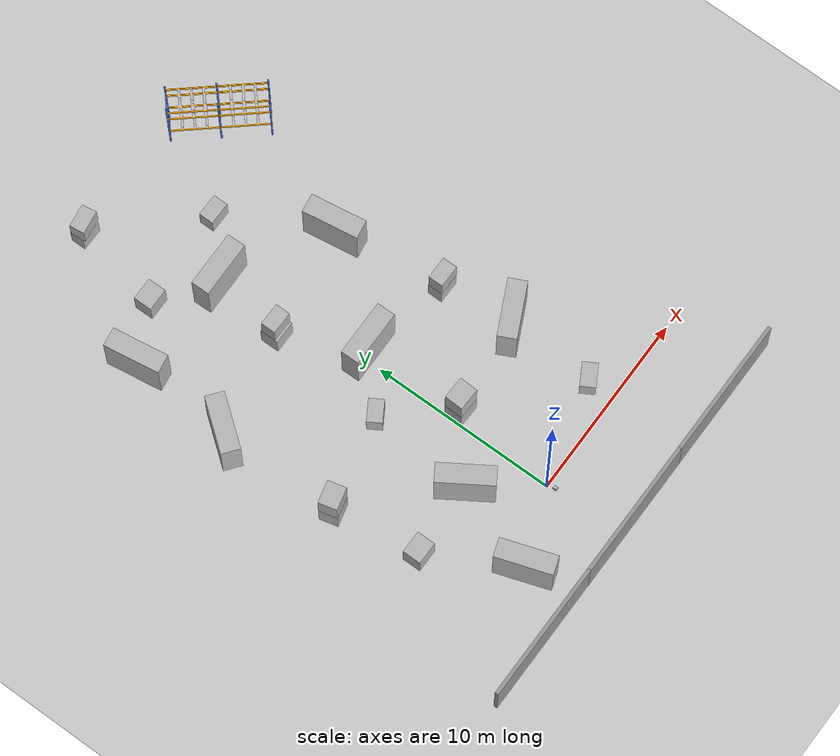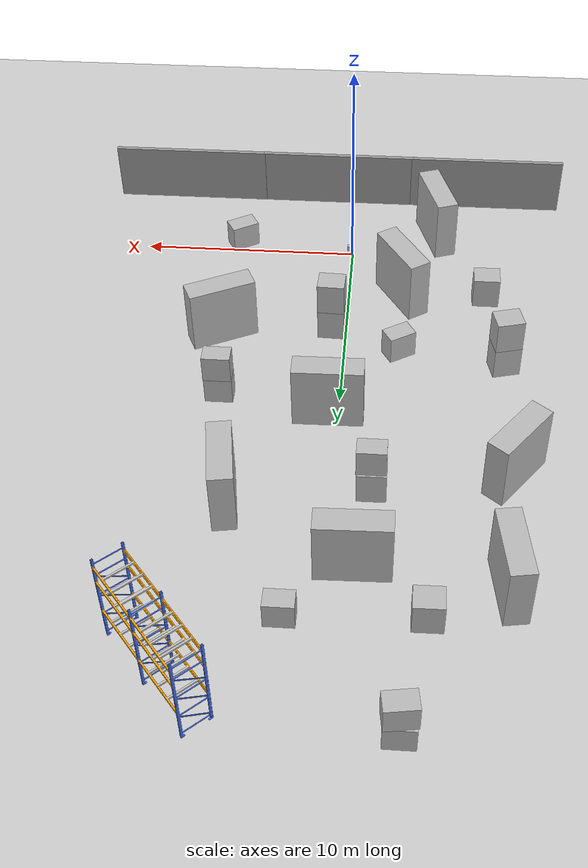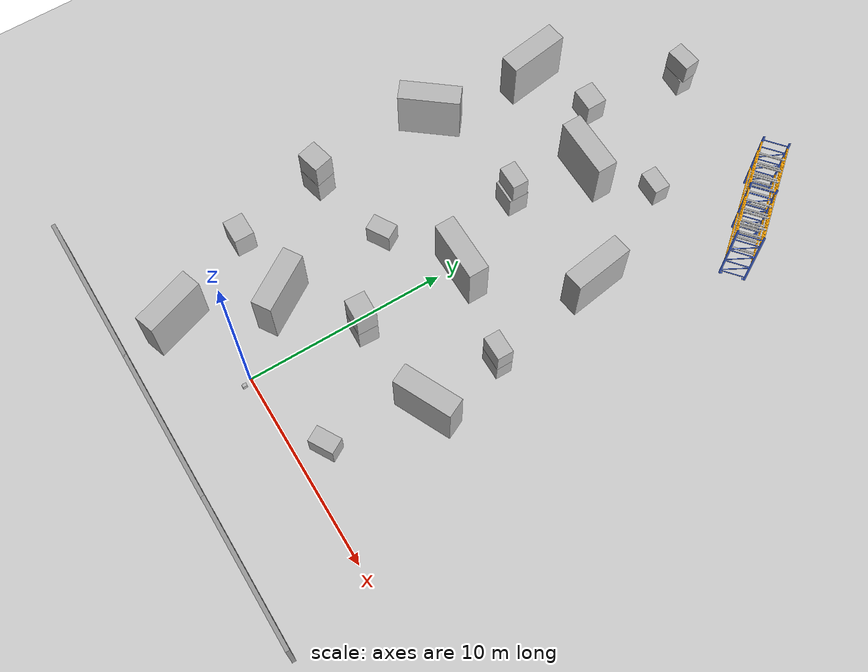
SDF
<sdf version="1.7">
 <world name="default">
  <light name="sun" type="directional">
   <pose>0 0 10 0 -0 0</pose>
   <diffuse>0.8 0.8 0.8 1</diffuse>
   <specular>0.2 0.2 0.2 1</specular>
   <attenuation>
    <range>1000</range>
    <constant>0.9</constant>
    <linear>0.01</linear>
    <quadratic>0.001</quadratic>
   </attenuation>
   <direction>-0.5 0.1 -0.9</direction>
   <spot><inner_angle>0</inner_angle><outer_angle>0</outer_angle><falloff>0</falloff></spot>
  </light>
  <model name="ground_plane">
   <static>1</static>
   <link name="link">
    <collision name="collision">
     <geometry><plane><normal>0 0 1</normal><size>100 100</size></plane></geometry>
     <surface><friction><ode><mu>100</mu><mu2>50</mu2></ode></friction></surface>
    </collision>
    <visual name="visual">
     <cast_shadows>0</cast_shadows>
     <geometry><plane><normal>0 0 1</normal><size>100 100</size></plane></geometry>
     <material>
      <script><uri>file://media/materials/scripts/gazebo.material</uri><name>Gazebo/Grey</name></script>
     </material>
    </visual>
   </link>
  </model>
  <gravity>0 0 -9.8</gravity>
  <magnetic_field>6e-06 2.3e-05 -4.2e-05</magnetic_field>
  <atmosphere type="adiabatic"/>
  <physics type="ode">
   <max_step_size>0.001</max_step_size>
   <real_time_factor>1</real_time_factor>
   <real_time_update_rate>1000</real_time_update_rate>
  </physics>
  <scene><ambient>0.4 0.4 0.4 1</ambient><background>0.7 0.7 0.7 1</background><shadows>1</shadows></scene>
  <spherical_coordinates>
   <surface_model>EARTH_WGS84</surface_model>
   <latitude_deg>0</latitude_deg>
   <longitude_deg>0</longitude_deg>
   <elevation>0</elevation>
   <heading_deg>0</heading_deg>
  </spherical_coordinates>
  <model name="Box">
   <static>1</static>
   <link name="link">
    <collision name="collision">
     <geometry><mesh><uri>model://Box/meshes/Box.dae</uri></mesh></geometry>
    </collision>
    <visual name="visual"><geometry><mesh><uri>model://Box/meshes/Box.dae</uri></mesh></geometry></visual>
   </link>
   <pose>0.182114 -0.394108 0 0 -0 0</pose>
  </model>
  <model name="brick_box_3x1x3">
   <static>1</static>
   <link name="chassis">
    <pose>0 0 1.5 0 -0 0</pose>
    <collision name="collision"><geometry><box><size>3 1 3</size></box></geometry></collision>
    <visual name="visual">
     <geometry><mesh><uri>model://brick_box_3x1x3/meshes/simple_box.dae</uri><scale>3 1 3</scale></mesh></geometry>
     <material>
      <script>
       <uri>model://brick_box_3x1x3/materials/scripts</uri>
       <uri>model://brick_box_3x1x3/materials/textures</uri>
       <name>BrickBox/Diffuse</name>
      </script>
     </material>
    </visual>
   </link>
   <pose>-2.46974 3.06331 0 0 0 -0.99916</pose>
  </model>
  <model name="brick_box_3x1x3_clone">
   <static>1</static>
   <link name="chassis">
    <pose>0 0 1.5 0 -0 0</pose>
    <collision name="collision"><geometry><box><size>3 1 3</size></box></geometry></collision>
    <visual name="visual">
     <geometry><mesh><uri>model://brick_box_3x1x3/meshes/simple_box.dae</uri><scale>3 1 3</scale></mesh></geometry>
     <material>
      <script>
       <uri>model://brick_box_3x1x3/materials/scripts</uri>
       <uri>model://brick_box_3x1x3/materials/textures</uri>
       <name>BrickBox/Diffuse</name>
      </script>
     </material>
    </visual>
   </link>
   <pose>-4.03567 -1.62229 0 0 -0 1.89603</pose>
  </model>
  <model name="Big box">
   <pose>0.629778 5.59499 2.24909 -1e-05 0.001495 -0.040431</pose>
   <static>0</static>
   <link name="link">
    <inertial>
     <mass>40</mass>
     <inertia><ixx>1</ixx><ixy>0</ixy><ixz>0</ixz><iyy>1</iyy><iyz>0</iyz><izz>1</izz></inertia>
    </inertial>
    <collision name="collision">
     <geometry><box><size>1.2 0.8 1.5</size></box></geometry>
     <surface><contact><ode><max_vel>0.1</max_vel><min_depth>0.001</min_depth></ode></contact></surface>
    </collision>
    <visual name="visual"><geometry><mesh><uri>model://big_box/meshes/big_box.dae</uri></mesh></geometry></visual>
   </link>
  </model>
  <model name="Big box_0">
   <pose>-6.38606 2.94836 0.749499 -0 -0.000833 6e-06</pose>
   <static>0</static>
   <link name="link">
    <inertial>
     <mass>40</mass>
     <inertia><ixx>1</ixx><ixy>0</ixy><ixz>0</ixz><iyy>1</iyy><iyz>0</iyz><izz>1</izz></inertia>
    </inertial>
    <collision name="collision">
     <geometry><box><size>1.2 0.8 1.5</size></box></geometry>
     <surface><contact><ode><max_vel>0.1</max_vel><min_depth>0.001</min_depth></ode></contact></surface>
    </collision>
    <visual name="visual"><geometry><mesh><uri>model://big_box/meshes/big_box.dae</uri></mesh></geometry></visual>
   </link>
  </model>
  <model name="Big box_1">
   <pose>0.623645 5.59399 0.749499 0 0.000833 -0.036606</pose>
   <static>0</static>
   <link name="link">
    <inertial>
     <mass>40</mass>
     <inertia><ixx>1</ixx><ixy>0</ixy><ixz>0</ixz><iyy>1</iyy><iyz>0</iyz><izz>1</izz></inertia>
    </inertial>
    <collision name="collision">
     <geometry><box><size>1.2 0.8 1.5</size></box></geometry>
     <surface><contact><ode><max_vel>0.1</max_vel><min_depth>0.001</min_depth></ode></contact></surface>
    </collision>
    <visual name="visual"><geometry><mesh><uri>model://big_box/meshes/big_box.dae</uri></mesh></geometry></visual>
   </link>
  </model>
  <model name="Big box 4">
   <pose>5.10472 1.25829 2.099 -0.955961 -1.56929 1.47945</pose>
   <static>0</static>
   <link name="link">
    <inertial>
     <mass>40</mass>
     <inertia><ixx>1</ixx><ixy>0</ixy><ixz>0</ixz><iyy>1</iyy><iyz>0</iyz><izz>1</izz></inertia>
    </inertial>
    <collision name="collision">
     <geometry><box><size>1.2 0.8 1.25</size></box></geometry>
     <surface><contact><ode><max_vel>0.1</max_vel><min_depth>0.001</min_depth></ode></contact></surface>
    </collision>
    <visual name="visual">
     <geometry><mesh><uri>model://big_box4/meshes/big_box.dae</uri></mesh></geometry>
    </visual>
   </link>
  </model>
  <model name="brick_box_3x1x3_clone_0">
   <static>1</static>
   <link name="chassis">
    <pose>0 0 1.5 0 -0 0</pose>
    <collision name="collision"><geometry><box><size>3 1 3</size></box></geometry></collision>
    <visual name="visual">
     <geometry><mesh><uri>model://brick_box_3x1x3/meshes/simple_box.dae</uri><scale>3 1 3</scale></mesh></geometry>
     <material>
      <script>
       <uri>model://brick_box_3x1x3/materials/scripts</uri>
       <uri>model://brick_box_3x1x3/materials/textures</uri>
       <name>BrickBox/Diffuse</name>
      </script>
     </material>
    </visual>
   </link>
   <pose>5.54678 6.12966 0 0 0 -2.69285</pose>
  </model>
  <model name="big_box3">
   <pose>-2.42222 8.43983 2.12423 -3.4e-05 -0.000153 0.541429</pose>
   <static>0</static>
   <link name="link">
    <inertial>
     <mass>40</mass>
     <inertia><ixx>1</ixx><ixy>0</ixy><ixz>0</ixz><iyy>1</iyy><iyz>0</iyz><izz>1</izz></inertia>
    </inertial>
    <collision name="collision">
     <geometry><box><size>1.2 0.8 1.25</size></box></geometry>
     <surface><contact><ode><max_vel>0.1</max_vel><min_depth>0.001</min_depth></ode></contact></surface>
    </collision>
    <visual name="visual">
     <geometry><mesh><uri>model://big_box3/meshes/big_box.dae</uri></mesh></geometry>
    </visual>
   </link>
  </model>
  <model name="brick_box_3x1x3_clone_1">
   <static>1</static>
   <link name="chassis">
    <pose>0 0 1.5 0 -0 0</pose>
    <collision name="collision"><geometry><box><size>3 1 3</size></box></geometry></collision>
    <visual name="visual">
     <geometry><mesh><uri>model://brick_box_3x1x3/meshes/simple_box.dae</uri><scale>3 1 3</scale></mesh></geometry>
     <material>
      <script>
       <uri>model://brick_box_3x1x3/materials/scripts</uri>
       <uri>model://brick_box_3x1x3/materials/textures</uri>
       <name>BrickBox/Diffuse</name>
      </script>
     </material>
    </visual>
   </link>
   <pose>0.420123 10.9877 0 0 -0 0.010238</pose>
  </model>
  <model name="brick_box_3x1x3_clone_2">
   <static>1</static>
   <link name="chassis">
    <pose>0 0 1.5 0 -0 0</pose>
    <collision name="collision"><geometry><box><size>3 1 3</size></box></geometry></collision>
    <visual name="visual">
     <geometry><mesh><uri>model://brick_box_3x1x3/meshes/simple_box.dae</uri><scale>3 1 3</scale></mesh></geometry>
     <material>
      <script>
       <uri>model://brick_box_3x1x3/materials/scripts</uri>
       <uri>model://brick_box_3x1x3/materials/textures</uri>
       <name>BrickBox/Diffuse</name>
      </script>
     </material>
    </visual>
   </link>
   <pose>4.23516 15.8413 0 0 0 -1.41912</pose>
  </model>
  <model name="brick_box_3x1x3_clone_3">
   <static>1</static>
   <link name="chassis">
    <pose>0 0 1.5 0 -0 0</pose>
    <collision name="collision"><geometry><box><size>3 1 3</size></box></geometry></collision>
    <visual name="visual">
     <geometry><mesh><uri>model://brick_box_3x1x3/meshes/simple_box.dae</uri><scale>3 1 3</scale></mesh></geometry>
     <material>
      <script>
       <uri>model://brick_box_3x1x3/materials/scripts</uri>
       <uri>model://brick_box_3x1x3/materials/textures</uri>
       <name>BrickBox/Diffuse</name>
      </script>
     </material>
    </visual>
   </link>
   <pose>-7.28132 13.9245 0 0 0 -2.23</pose>
  </model>
  <model name="big_box3_0">
   <pose>5.16674 10.0236 0.624499 0.001247 -0 -0.001691</pose>
   <static>0</static>
   <link name="link">
    <inertial>
     <mass>40</mass>
     <inertia><ixx>1</ixx><ixy>0</ixy><ixz>0</ixz><iyy>1</iyy><iyz>0</iyz><izz>1</izz></inertia>
    </inertial>
    <collision name="collision">
     <geometry><box><size>1.2 0.8 1.25</size></box></geometry>
     <surface><contact><ode><max_vel>0.1</max_vel><min_depth>0.001</min_depth></ode></contact></surface>
    </collision>
    <visual name="visual">
     <geometry><mesh><uri>model://big_box3/meshes/big_box.dae</uri></mesh></geometry>
    </visual>
   </link>
  </model>
  <model name="Big box 4_0">
   <pose>5.17953 10.0141 1.87399 0.001242 -0.000835 -0.002843</pose>
   <static>0</static>
   <link name="link">
    <inertial>
     <mass>40</mass>
     <inertia><ixx>1</ixx><ixy>0</ixy><ixz>0</ixz><iyy>1</iyy><iyz>0</iyz><izz>1</izz></inertia>
    </inertial>
    <collision name="collision">
     <geometry><box><size>1.2 0.8 1.25</size></box></geometry>
     <surface><contact><ode><max_vel>0.1</max_vel><min_depth>0.001</min_depth></ode></contact></surface>
    </collision>
    <visual name="visual">
     <geometry><mesh><uri>model://big_box4/meshes/big_box.dae</uri></mesh></geometry>
    </visual>
   </link>
  </model>
  <model name="grey_wall">
   <static>1</static>
   <link name="link">
    <pose>0 0 1.4 0 -0 0</pose>
    <collision name="collision"><geometry><box><size>7.5 0.2 2.8</size></box></geometry></collision>
    <visual name="visual">
     <cast_shadows>0</cast_shadows>
     <geometry><box><size>7.5 0.2 2.8</size></box></geometry>
     <material>
      <script>
       <uri>model://grey_wall/materials/scripts</uri>
       <uri>model://grey_wall/materials/textures</uri>
       <name>vrc/grey_wall</name>
      </script>
     </material>
    </visual>
   </link>
   <pose>-6.4722 -4.38366 0 0 -0 0</pose>
  </model>
  <model name="grey_wall_clone">
   <static>1</static>
   <link name="link">
    <pose>0 0 1.4 0 -0 0</pose>
    <collision name="collision"><geometry><box><size>7.5 0.2 2.8</size></box></geometry></collision>
    <visual name="visual">
     <cast_shadows>0</cast_shadows>
     <geometry><box><size>7.5 0.2 2.8</size></box></geometry>
     <material>
      <script>
       <uri>model://grey_wall/materials/scripts</uri>
       <uri>model://grey_wall/materials/textures</uri>
       <name>vrc/grey_wall</name>
      </script>
     </material>
    </visual>
   </link>
   <pose>0.954133 -4.38595 0 0 -0 0</pose>
  </model>
  <model name="grey_wall_clone_0">
   <static>1</static>
   <link name="link">
    <pose>0 0 1.4 0 -0 0</pose>
    <collision name="collision"><geometry><box><size>7.5 0.2 2.8</size></box></geometry></collision>
    <visual name="visual">
     <cast_shadows>0</cast_shadows>
     <geometry><box><size>7.5 0.2 2.8</size></box></geometry>
     <material>
      <script>
       <uri>model://grey_wall/materials/scripts</uri>
       <uri>model://grey_wall/materials/textures</uri>
       <name>vrc/grey_wall</name>
      </script>
     </material>
    </visual>
   </link>
   <pose>8.39955 -4.38045 0 0 -0 0</pose>
  </model>
  <model name="Big box_0_clone">
   <pose>-7.07761 7.5453 0.7495 -1e-06 0.000833 0.240191</pose>
   <static>0</static>
   <link name="link">
    <inertial>
     <mass>40</mass>
     <inertia><ixx>1</ixx><ixy>0</ixy><ixz>0</ixz><iyy>1</iyy><iyz>0</iyz><izz>1</izz></inertia>
    </inertial>
    <collision name="collision">
     <geometry><box><size>1.2 0.8 1.5</size></box></geometry>
     <surface><contact><ode><max_vel>0.1</max_vel><min_depth>0.001</min_depth></ode></contact></surface>
    </collision>
    <visual name="visual"><geometry><mesh><uri>model://big_box/meshes/big_box.dae</uri></mesh></geometry></visual>
   </link>
  </model>
  <model name="Big box_0_clone_0">
   <pose>-3.88715 20.9925 0.749496 -0 -0.000828 0.008073</pose>
   <static>0</static>
   <link name="link">
    <inertial>
     <mass>40</mass>
     <inertia><ixx>1</ixx><ixy>0</ixy><ixz>0</ixz><iyy>1</iyy><iyz>0</iyz><izz>1</izz></inertia>
    </inertial>
    <collision name="collision">
     <geometry><box><size>1.2 0.8 1.5</size></box></geometry>
     <surface><contact><ode><max_vel>0.1</max_vel><min_depth>0.001</min_depth></ode></contact></surface>
    </collision>
    <visual name="visual"><geometry><mesh><uri>model://big_box/meshes/big_box.dae</uri></mesh></geometry></visual>
   </link>
  </model>
  <model name="Big box 4_0_clone">
   <pose>-1.56485 15.0678 2.12403 1.1e-05 -0.001683 -0.005356</pose>
   <static>0</static>
   <link name="link">
    <inertial>
     <mass>40</mass>
     <inertia><ixx>1</ixx><ixy>0</ixy><ixz>0</ixz><iyy>1</iyy><iyz>0</iyz><izz>1</izz></inertia>
    </inertial>
    <collision name="collision">
     <geometry><box><size>1.2 0.8 1.25</size></box></geometry>
     <surface><contact><ode><max_vel>0.1</max_vel><min_depth>0.001</min_depth></ode></contact></surface>
    </collision>
    <visual name="visual">
     <geometry><mesh><uri>model://big_box4/meshes/big_box.dae</uri></mesh></geometry>
    </visual>
   </link>
  </model>
  <model name="Big box 4_0_clone_0">
   <pose>1.48117 21.1987 0.624496 0 -0.000826 -0.000956</pose>
   <static>0</static>
   <link name="link">
    <inertial>
     <mass>40</mass>
     <inertia><ixx>1</ixx><ixy>0</ixy><ixz>0</ixz><iyy>1</iyy><iyz>0</iyz><izz>1</izz></inertia>
    </inertial>
    <collision name="collision">
     <geometry><box><size>1.2 0.8 1.25</size></box></geometry>
     <surface><contact><ode><max_vel>0.1</max_vel><min_depth>0.001</min_depth></ode></contact></surface>
    </collision>
    <visual name="visual">
     <geometry><mesh><uri>model://big_box4/meshes/big_box.dae</uri></mesh></geometry>
    </visual>
   </link>
  </model>
  <model name="Big box 4_0_clone_1">
   <pose>-2.98472 25.7152 0.624499 -1e-06 -0.000835 -0.004265</pose>
   <static>0</static>
   <link name="link">
    <inertial>
     <mass>40</mass>
     <inertia><ixx>1</ixx><ixy>0</ixy><ixz>0</ixz><iyy>1</iyy><iyz>0</iyz><izz>1</izz></inertia>
    </inertial>
    <collision name="collision">
     <geometry><box><size>1.2 0.8 1.25</size></box></geometry>
     <surface><contact><ode><max_vel>0.1</max_vel><min_depth>0.001</min_depth></ode></contact></surface>
    </collision>
    <visual name="visual">
     <geometry><mesh><uri>model://big_box4/meshes/big_box.dae</uri></mesh></geometry>
    </visual>
   </link>
  </model>
  <model name="Big box 4_0_clone_2">
   <pose>-2.95968 25.7043 1.84902 -1.68677 -1.57073 1.83294</pose>
   <static>0</static>
   <link name="link">
    <inertial>
     <mass>40</mass>
     <inertia><ixx>1</ixx><ixy>0</ixy><ixz>0</ixz><iyy>1</iyy><iyz>0</iyz><izz>1</izz></inertia>
    </inertial>
    <collision name="collision">
     <geometry><box><size>1.2 0.8 1.25</size></box></geometry>
     <surface><contact><ode><max_vel>0.1</max_vel><min_depth>0.001</min_depth></ode></contact></surface>
    </collision>
    <visual name="visual">
     <geometry><mesh><uri>model://big_box4/meshes/big_box.dae</uri></mesh></geometry>
    </visual>
   </link>
  </model>
  <model name="Big box_0_clone_clone">
   <pose>-1.58628 15.0444 0.749498 0 -0.000832 0.003458</pose>
   <static>0</static>
   <link name="link">
    <inertial>
     <mass>40</mass>
     <inertia><ixx>1</ixx><ixy>0</ixy><ixz>0</ixz><iyy>1</iyy><iyz>0</iyz><izz>1</izz></inertia>
    </inertial>
    <collision name="collision">
     <geometry><box><size>1.2 0.8 1.5</size></box></geometry>
     <surface><contact><ode><max_vel>0.1</max_vel><min_depth>0.001</min_depth></ode></contact></surface>
    </collision>
    <visual name="visual"><geometry><mesh><uri>model://big_box/meshes/big_box.dae</uri></mesh></geometry></visual>
   </link>
  </model>
  <model name="brick_box_3x1x3_clone_2_clone">
   <static>1</static>
   <link name="chassis">
    <pose>0 0 1.5 0 -0 0</pose>
    <collision name="collision"><geometry><box><size>3 1 3</size></box></geometry></collision>
    <visual name="visual">
     <geometry><mesh><uri>model://brick_box_3x1x3/meshes/simple_box.dae</uri><scale>3 1 3</scale></mesh></geometry>
     <material>
      <script>
       <uri>model://brick_box_3x1x3/materials/scripts</uri>
       <uri>model://brick_box_3x1x3/materials/textures</uri>
       <name>BrickBox/Diffuse</name>
      </script>
     </material>
    </visual>
   </link>
   <pose>-6.86588 19.4597 0 0 0 -1.41912</pose>
  </model>
  <model name="brick_box_3x1x3_clone_2_clone_0">
   <static>1</static>
   <link name="chassis">
    <pose>0 0 1.5 0 -0 0</pose>
    <collision name="collision"><geometry><box><size>3 1 3</size></box></geometry></collision>
    <visual name="visual">
     <geometry><mesh><uri>model://brick_box_3x1x3/meshes/simple_box.dae</uri><scale>3 1 3</scale></mesh></geometry>
     <material>
      <script>
       <uri>model://brick_box_3x1x3/materials/scripts</uri>
       <uri>model://brick_box_3x1x3/materials/textures</uri>
       <name>BrickBox/Diffuse</name>
      </script>
     </material>
    </visual>
   </link>
   <pose>-1.04729 18.8917 0 0 -0 0.01966</pose>
  </model>
  <model name="Big box_0_clone_clone_0">
   <pose>-7.06985 7.55559 2.24899 1e-06 -7e-06 0.246759</pose>
   <static>0</static>
   <link name="link">
    <inertial>
     <mass>40</mass>
     <inertia><ixx>1</ixx><ixy>0</ixy><ixz>0</ixz><iyy>1</iyy><iyz>0</iyz><izz>1</izz></inertia>
    </inertial>
    <collision name="collision">
     <geometry><box><size>1.2 0.8 1.5</size></box></geometry>
     <surface><contact><ode><max_vel>0.1</max_vel><min_depth>0.001</min_depth></ode></contact></surface>
    </collision>
    <visual name="visual"><geometry><mesh><uri>model://big_box/meshes/big_box.dae</uri></mesh></geometry></visual>
   </link>
  </model>
  <model name="Shelves high">
   <static>1</static>
   <link name="link">
    <collision name="collision">
     <geometry>
      <mesh><uri>model://shelves_high/meshes/shelves_high_collision.dae</uri><scale>1 1.2 1.2</scale></mesh>
     </geometry>
    </collision>
    <visual name="visual">
     <geometry>
      <mesh><uri>model://shelves_high/meshes/shelves_high.dae</uri><scale>1 1.2 1.2</scale></mesh>
     </geometry>
    </visual>
   </link>
   <pose>5.94247 24.2025 0 0 0 -0.862286</pose>
  </model>
 </world>
</sdf>
